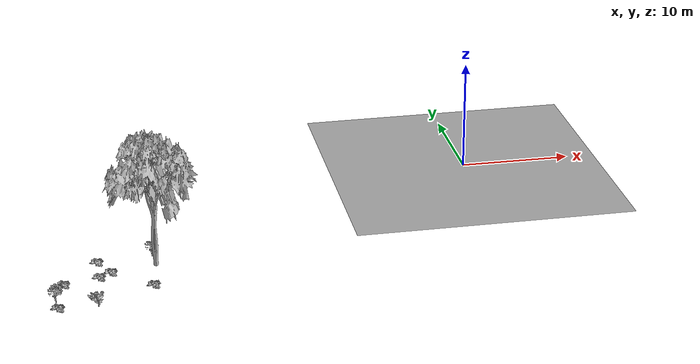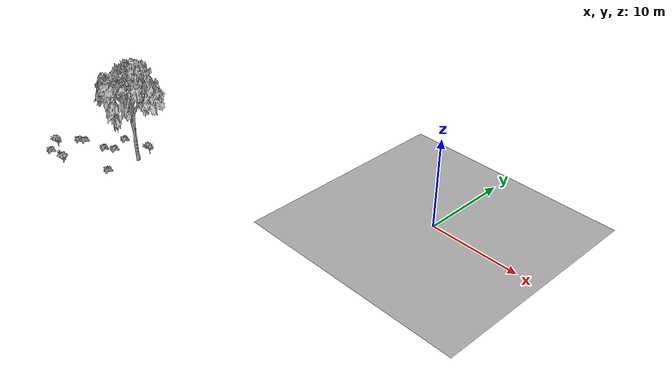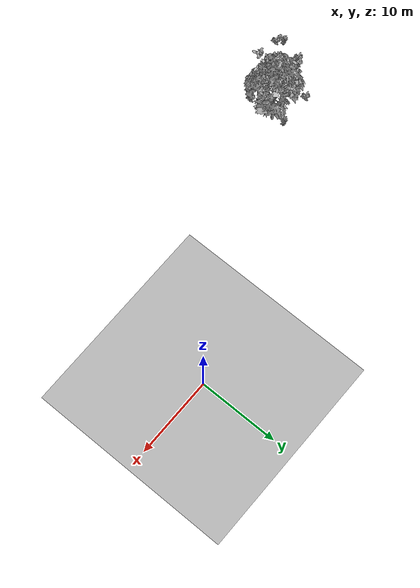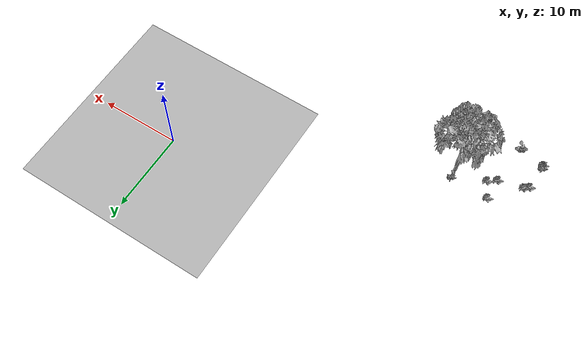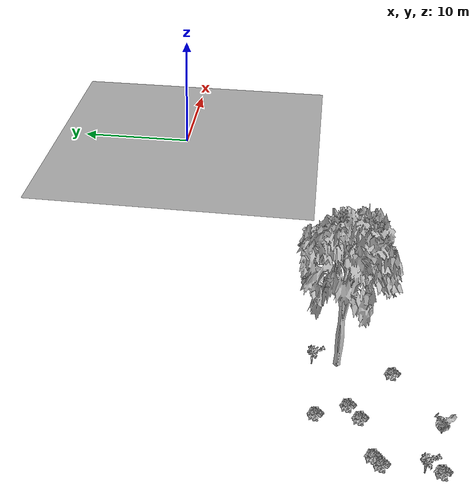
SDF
<sdf version="1.7">
 <world name="default">
  <model name="ground_plane">
   <static>1</static>
   <link name="link">
    <collision name="collision">
     <pose>-50 0 0 0 -0 0</pose>
     <geometry><plane><normal>0 0 1</normal><size>80 80</size></plane></geometry>
     <surface><contact><ode><min_depth>0.01</min_depth><max_vel>0</max_vel></ode></contact></surface>
    </collision>
    <visual name="grass">
     <cast_shadows>0</cast_shadows>
     <geometry>
      <mesh>
       <scale>0.46714285714285714 0.46714285714285714 0.1</scale>
       <uri>file://grass_plane/meshes/grass_plane.dae</uri>
      </mesh>
     </geometry>
    </visual>
   </link>
  </model>
  <model name="Tree 509">
   <static>1</static>
   <pose>-30.284121004189373 -14.753684354182237 0 1.57079 -0 0</pose>
   <link name="link">
    <collision name="collision">
     <geometry><mesh><scale>3.5 5 3.5</scale><uri>model://tree_2/meshes/tree_2.obj</uri></mesh></geometry>
    </collision>
    <visual name="visual">
     <geometry><mesh><scale>3.5 5 3.5</scale><uri>model://tree_2/meshes/tree_2.obj</uri></mesh></geometry>
    </visual>
   </link>
  </model>
  <model name="Bush 164">
   <static>1</static>
   <pose>-34.02495789322205 -15.520311909774954 0 1.57079 -0 0</pose>
   <link name="link">
    <collision name="collision">
     <geometry><mesh><scale>2 2 2</scale><uri>model://bush_2/meshes/bush_2.obj</uri></mesh></geometry>
     <surface><contact><collide_without_contact>false</collide_without_contact></contact></surface>
    </collision>
    <visual name="visual">
     <geometry><mesh><scale>2 2 2</scale><uri>model://bush_2/meshes/bush_2.obj</uri></mesh></geometry>
    </visual>
   </link>
  </model>
  <model name="Bush 191">
   <static>1</static>
   <pose>-38.652016488330084 -20.937491150670535 0 1.57079 -0 0</pose>
   <link name="link">
    <collision name="collision">
     <geometry><mesh><scale>2 2 2</scale><uri>model://bush_2/meshes/bush_2.obj</uri></mesh></geometry>
     <surface><contact><collide_without_contact>false</collide_without_contact></contact></surface>
    </collision>
    <visual name="visual">
     <geometry><mesh><scale>2 2 2</scale><uri>model://bush_2/meshes/bush_2.obj</uri></mesh></geometry>
    </visual>
   </link>
  </model>
  <model name="Bush 230">
   <static>1</static>
   <pose>-38.015425865463854 -16.992994596363154 0 1.57079 -0 0</pose>
   <link name="link">
    <collision name="collision">
     <geometry><mesh><scale>2 2 2</scale><uri>model://bush_2/meshes/bush_2.obj</uri></mesh></geometry>
     <surface><contact><collide_without_contact>false</collide_without_contact></contact></surface>
    </collision>
    <visual name="visual">
     <geometry><mesh><scale>2 2 2</scale><uri>model://bush_2/meshes/bush_2.obj</uri></mesh></geometry>
    </visual>
   </link>
  </model>
  <model name="Bush 245">
   <static>1</static>
   <pose>-38.56844245154962 -17.445045747009225 0 1.57079 -0 0</pose>
   <link name="link">
    <collision name="collision">
     <geometry><mesh><scale>2 2 2</scale><uri>model://bush_2/meshes/bush_2.obj</uri></mesh></geometry>
     <surface><contact><collide_without_contact>false</collide_without_contact></contact></surface>
    </collision>
    <visual name="visual">
     <geometry><mesh><scale>2 2 2</scale><uri>model://bush_2/meshes/bush_2.obj</uri></mesh></geometry>
    </visual>
   </link>
  </model>
  <model name="Bush 480">
   <static>1</static>
   <pose>-30.72277555544065 -18.362804924194272 0 1.57079 -0 0</pose>
   <link name="link">
    <collision name="collision">
     <geometry><mesh><scale>2 2 2</scale><uri>model://bush_2/meshes/bush_2.obj</uri></mesh></geometry>
     <surface><contact><collide_without_contact>false</collide_without_contact></contact></surface>
    </collision>
    <visual name="visual">
     <geometry><mesh><scale>2 2 2</scale><uri>model://bush_2/meshes/bush_2.obj</uri></mesh></geometry>
    </visual>
   </link>
  </model>
  <model name="Bush 488">
   <static>1</static>
   <pose>-35.046005734329285 -13.520904874366781 0 1.57079 -0 0</pose>
   <link name="link">
    <collision name="collision">
     <geometry><mesh><scale>2 2 2</scale><uri>model://bush_2/meshes/bush_2.obj</uri></mesh></geometry>
     <surface><contact><collide_without_contact>false</collide_without_contact></contact></surface>
    </collision>
    <visual name="visual">
     <geometry><mesh><scale>2 2 2</scale><uri>model://bush_2/meshes/bush_2.obj</uri></mesh></geometry>
    </visual>
   </link>
  </model>
  <model name="Bush 496">
   <static>1</static>
   <pose>-35.03022336688579 -16.260857128481412 0 1.57079 -0 0</pose>
   <link name="link">
    <collision name="collision">
     <geometry><mesh><scale>2 2 2</scale><uri>model://bush_2/meshes/bush_2.obj</uri></mesh></geometry>
     <surface><contact><collide_without_contact>false</collide_without_contact></contact></surface>
    </collision>
    <visual name="visual">
     <geometry><mesh><scale>2 2 2</scale><uri>model://bush_2/meshes/bush_2.obj</uri></mesh></geometry>
    </visual>
   </link>
  </model>
  <model name="Bush 565">
   <static>1</static>
   <pose>-30.342106025966537 -13.086049477685098 0 1.57079 -0 0</pose>
   <link name="link">
    <collision name="collision">
     <geometry><mesh><scale>2 2 2</scale><uri>model://bush_5/meshes/bush_5.obj</uri></mesh></geometry>
     <surface><contact><collide_without_contact>false</collide_without_contact></contact></surface>
    </collision>
    <visual name="visual">
     <geometry><mesh><scale>2 2 2</scale><uri>model://bush_5/meshes/bush_5.obj</uri></mesh></geometry>
    </visual>
   </link>
  </model>
  <model name="Bush 581">
   <static>1</static>
   <pose>-35.42363232435186 -21.059013022272303 0 1.57079 -0 0</pose>
   <link name="link">
    <collision name="collision">
     <geometry><mesh><scale>2 2 2</scale><uri>model://bush_0/meshes/bush_0.obj</uri></mesh></geometry>
     <surface><contact><collide_without_contact>false</collide_without_contact></contact></surface>
    </collision>
    <visual name="visual">
     <geometry><mesh><scale>2 2 2</scale><uri>model://bush_0/meshes/bush_0.obj</uri></mesh></geometry>
    </visual>
   </link>
  </model>
  <model name="Bush 592">
   <static>1</static>
   <pose>-38.7408135169907 -19.84464313261369 0 1.57079 -0 0</pose>
   <link name="link">
    <collision name="collision">
     <geometry><mesh><scale>2 2 2</scale><uri>model://bush_5/meshes/bush_5.obj</uri></mesh></geometry>
     <surface><contact><collide_without_contact>false</collide_without_contact></contact></surface>
    </collision>
    <visual name="visual">
     <geometry><mesh><scale>2 2 2</scale><uri>model://bush_5/meshes/bush_5.obj</uri></mesh></geometry>
    </visual>
   </link>
  </model>
 </world>
</sdf>
